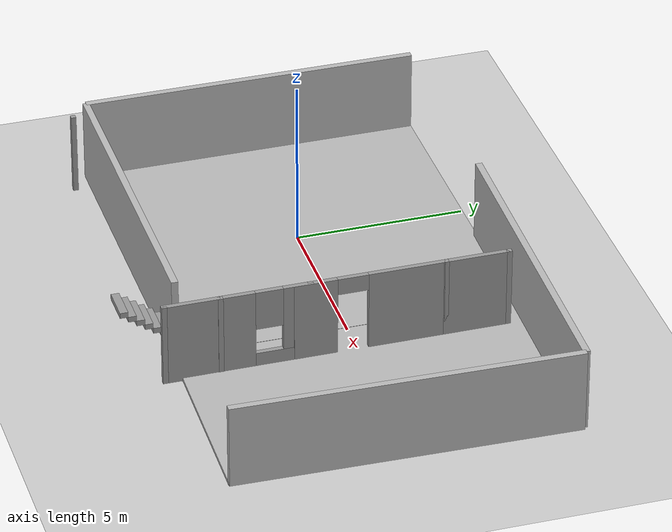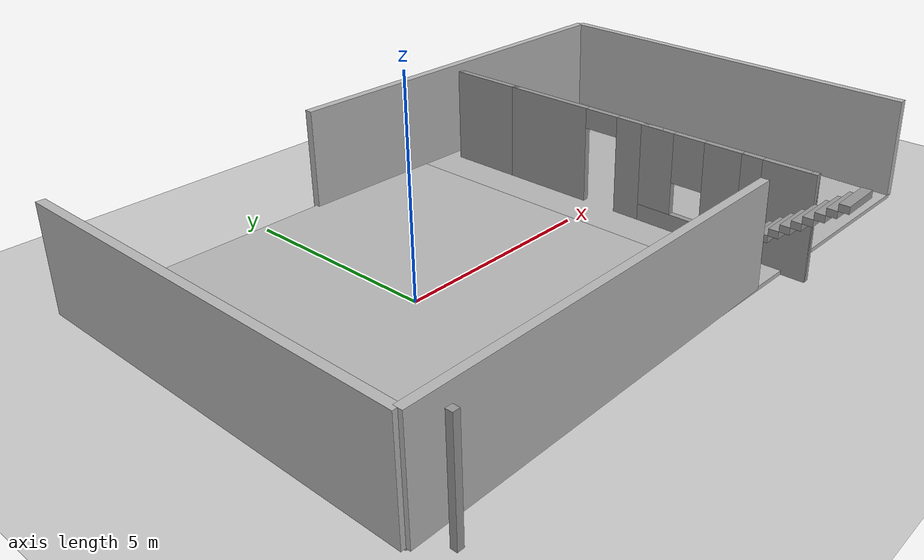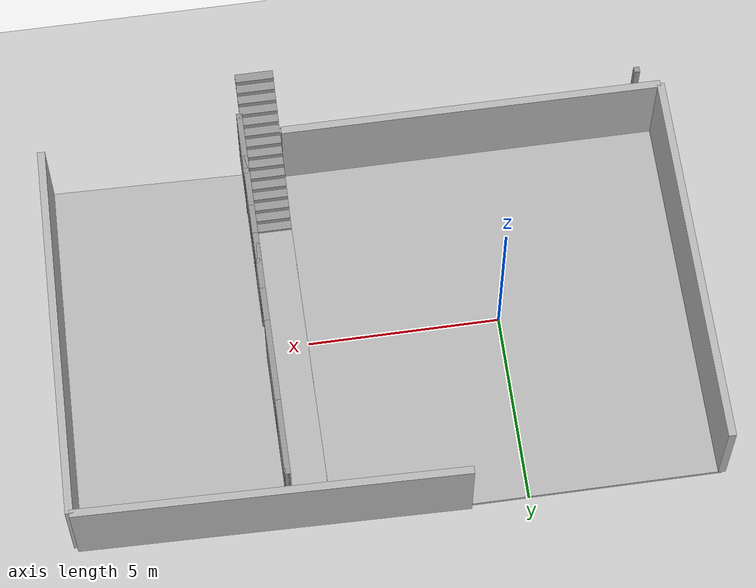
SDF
<sdf version="1.7">
 <world name="default">
  <light name="sun" type="directional">
   <pose>0 0 10 0 -0 0</pose>
   <diffuse>0.8 0.8 0.8 1</diffuse>
   <specular>0.2 0.2 0.2 1</specular>
   <attenuation>
    <range>1000</range>
    <constant>0.9</constant>
    <linear>0.01</linear>
    <quadratic>0.001</quadratic>
   </attenuation>
   <direction>-0.5 0.1 -0.9</direction>
   <spot><inner_angle>0</inner_angle><outer_angle>0</outer_angle><falloff>0</falloff></spot>
  </light>
  <model name="ground_plane">
   <static>1</static>
   <link name="link">
    <collision name="collision">
     <geometry><plane><normal>0 0 1</normal><size>100 100</size></plane></geometry>
     <surface>
      <contact><collide_bitmask>65535</collide_bitmask></contact>
      <friction><ode><mu>100</mu><mu2>50</mu2></ode></friction>
     </surface>
    </collision>
    <visual name="visual">
     <cast_shadows>0</cast_shadows>
     <geometry><plane><normal>0 0 1</normal><size>100 100</size></plane></geometry>
     <material>
      <script><uri>file://media/materials/scripts/gazebo.material</uri><name>Gazebo/Grey</name></script>
     </material>
    </visual>
   </link>
  </model>
  <gravity>0 0 -9.8</gravity>
  <magnetic_field>6e-06 2.3e-05 -4.2e-05</magnetic_field>
  <atmosphere type="adiabatic"/>
  <physics type="ode">
   <max_step_size>0.001</max_step_size>
   <real_time_factor>1</real_time_factor>
   <real_time_update_rate>1000</real_time_update_rate>
  </physics>
  <scene><ambient>0.4 0.4 0.4 1</ambient><background>0.7 0.7 0.7 1</background><shadows>1</shadows></scene>
  <audio><device>default</device></audio>
  <spherical_coordinates>
   <surface_model>EARTH_WGS84</surface_model>
   <latitude_deg>0</latitude_deg>
   <longitude_deg>0</longitude_deg>
   <elevation>0</elevation>
   <heading_deg>0</heading_deg>
  </spherical_coordinates>
  <model name="hotel_world">
   <link name="floor">
    <inertial>
     <mass>1</mass>
     <inertia><ixx>1</ixx><ixy>0</ixy><ixz>0</ixz><iyy>1</iyy><iyz>0</iyz><izz>1</izz></inertia>
    </inertial>
    <collision name="floor_collision"><geometry><box><size>10 10 0.1</size></box></geometry></collision>
    <collision name="floor_fixed_joint_lump__wall1_collision_1">
     <pose>-5 0 1.25 0 -0 0</pose>
     <geometry><box><size>0.2 10 2.5</size></box></geometry>
    </collision>
    <collision name="floor_fixed_joint_lump__wall2_collision_2">
     <pose>0 -5 1.25 0 -0 0</pose>
     <geometry><box><size>10 0.2 2.5</size></box></geometry>
    </collision>
    <visual name="floor_visual"><geometry><box><size>10 10 0.1</size></box></geometry></visual>
    <visual name="floor_fixed_joint_lump__wall1_visual_1">
     <pose>-5 0 1.25 0 -0 0</pose>
     <geometry><box><size>0.2 10 2.5</size></box></geometry>
    </visual>
    <visual name="floor_fixed_joint_lump__wall2_visual_2">
     <pose>0 -5 1.25 0 -0 0</pose>
     <geometry><box><size>10 0.2 2.5</size></box></geometry>
    </visual>
   </link>
   <pose>0.021485 0.006035 0.049982 0 -4e-06 0</pose>
  </model>
  <model name="hotel_world_clone">
   <link name="floor">
    <inertial>
     <mass>1</mass>
     <inertia><ixx>1</ixx><ixy>0</ixy><ixz>0</ixz><iyy>1</iyy><iyz>0</iyz><izz>1</izz></inertia>
    </inertial>
    <collision name="floor_collision"><geometry><box><size>10 10 0.1</size></box></geometry></collision>
    <collision name="floor_fixed_joint_lump__wall1_collision_1">
     <pose>-5 0 1.25 0 -0 0</pose>
     <geometry><box><size>0.2 10 2.5</size></box></geometry>
    </collision>
    <collision name="floor_fixed_joint_lump__wall2_collision_2">
     <pose>0 -5 1.25 0 -0 0</pose>
     <geometry><box><size>10 0.2 2.5</size></box></geometry>
    </collision>
    <visual name="floor_visual"><geometry><box><size>10 10 0.1</size></box></geometry></visual>
    <visual name="floor_fixed_joint_lump__wall1_visual_1">
     <pose>-5 0 1.25 0 -0 0</pose>
     <geometry><box><size>0.2 10 2.5</size></box></geometry>
    </visual>
    <visual name="floor_fixed_joint_lump__wall2_visual_2">
     <pose>0 -5 1.25 0 -0 0</pose>
     <geometry><box><size>10 0.2 2.5</size></box></geometry>
    </visual>
   </link>
   <pose>6.36702 -0.108601 0.041895 0 4e-06 3.11863</pose>
  </model>
  <model name="Untitled_0">
   <pose>0.803426 -1.1716 0 0 -0 0</pose>
   <link name="Stairs_0">
    <visual name="Stairs_0_Visual_0">
     <pose>4.71725 -2.25797 0.083333 0 -0 0</pose>
     <geometry><box><size>1 0.233333 0.166667</size></box></geometry>
     <material>
      <script><uri>file://media/materials/scripts/gazebo.material</uri><name>Gazebo/Grey</name></script>
      <ambient>1 1 1 1</ambient>
     </material>
     <meta><layer>0</layer></meta>
    </visual>
    <collision name="Stairs_0_Collision_0">
     <geometry><box><size>1 0.233333 0.166667</size></box></geometry>
     <pose>4.71725 -2.25797 0.083333 0 -0 0</pose>
    </collision>
    <visual name="Stairs_0_Visual_1">
     <pose>4.71725 -2.49131 0.25 0 -0 0</pose>
     <geometry><box><size>1 0.233333 0.166667</size></box></geometry>
     <material>
      <script><uri>file://media/materials/scripts/gazebo.material</uri><name>Gazebo/Grey</name></script>
      <ambient>1 1 1 1</ambient>
     </material>
     <meta><layer>0</layer></meta>
    </visual>
    <collision name="Stairs_0_Collision_1">
     <geometry><box><size>1 0.233333 0.166667</size></box></geometry>
     <pose>4.71725 -2.49131 0.25 0 -0 0</pose>
    </collision>
    <visual name="Stairs_0_Visual_2">
     <pose>4.71725 -2.72464 0.416667 0 -0 0</pose>
     <geometry><box><size>1 0.233333 0.166667</size></box></geometry>
     <material>
      <script><uri>file://media/materials/scripts/gazebo.material</uri><name>Gazebo/Grey</name></script>
      <ambient>1 1 1 1</ambient>
     </material>
     <meta><layer>0</layer></meta>
    </visual>
    <collision name="Stairs_0_Collision_2">
     <geometry><box><size>1 0.233333 0.166667</size></box></geometry>
     <pose>4.71725 -2.72464 0.416667 0 -0 0</pose>
    </collision>
    <visual name="Stairs_0_Visual_3">
     <pose>4.71725 -2.95797 0.583333 0 -0 0</pose>
     <geometry><box><size>1 0.233333 0.166667</size></box></geometry>
     <material>
      <script><uri>file://media/materials/scripts/gazebo.material</uri><name>Gazebo/Grey</name></script>
      <ambient>1 1 1 1</ambient>
     </material>
     <meta><layer>0</layer></meta>
    </visual>
    <collision name="Stairs_0_Collision_3">
     <geometry><box><size>1 0.233333 0.166667</size></box></geometry>
     <pose>4.71725 -2.95797 0.583333 0 -0 0</pose>
    </collision>
    <visual name="Stairs_0_Visual_4">
     <pose>4.71725 -3.19131 0.75 0 -0 0</pose>
     <geometry><box><size>1 0.233333 0.166667</size></box></geometry>
     <material>
      <script><uri>file://media/materials/scripts/gazebo.material</uri><name>Gazebo/Grey</name></script>
      <ambient>1 1 1 1</ambient>
     </material>
     <meta><layer>0</layer></meta>
    </visual>
    <collision name="Stairs_0_Collision_4">
     <geometry><box><size>1 0.233333 0.166667</size></box></geometry>
     <pose>4.71725 -3.19131 0.75 0 -0 0</pose>
    </collision>
    <visual name="Stairs_0_Visual_5">
     <pose>4.71725 -3.42464 0.916667 0 -0 0</pose>
     <geometry><box><size>1 0.233333 0.166667</size></box></geometry>
     <material>
      <script><uri>file://media/materials/scripts/gazebo.material</uri><name>Gazebo/Grey</name></script>
      <ambient>1 1 1 1</ambient>
     </material>
     <meta><layer>0</layer></meta>
    </visual>
    <collision name="Stairs_0_Collision_5">
     <geometry><box><size>1 0.233333 0.166667</size></box></geometry>
     <pose>4.71725 -3.42464 0.916667 0 -0 0</pose>
    </collision>
    <visual name="Stairs_0_Visual_6">
     <pose>4.71725 -3.65797 1.08333 0 -0 0</pose>
     <geometry><box><size>1 0.233333 0.166667</size></box></geometry>
     <material>
      <script><uri>file://media/materials/scripts/gazebo.material</uri><name>Gazebo/Grey</name></script>
      <ambient>1 1 1 1</ambient>
     </material>
     <meta><layer>0</layer></meta>
    </visual>
    <collision name="Stairs_0_Collision_6">
     <geometry><box><size>1 0.233333 0.166667</size></box></geometry>
     <pose>4.71725 -3.65797 1.08333 0 -0 0</pose>
    </collision>
    <visual name="Stairs_0_Visual_7">
     <pose>4.71725 -3.89131 1.25 0 -0 0</pose>
     <geometry><box><size>1 0.233333 0.166667</size></box></geometry>
     <material>
      <script><uri>file://media/materials/scripts/gazebo.material</uri><name>Gazebo/Grey</name></script>
      <ambient>1 1 1 1</ambient>
     </material>
     <meta><layer>0</layer></meta>
    </visual>
    <collision name="Stairs_0_Collision_7">
     <geometry><box><size>1 0.233333 0.166667</size></box></geometry>
     <pose>4.71725 -3.89131 1.25 0 -0 0</pose>
    </collision>
    <visual name="Stairs_0_Visual_8">
     <pose>4.71725 -4.12464 1.41667 0 -0 0</pose>
     <geometry><box><size>1 0.233333 0.166667</size></box></geometry>
     <material>
      <script><uri>file://media/materials/scripts/gazebo.material</uri><name>Gazebo/Grey</name></script>
      <ambient>1 1 1 1</ambient>
     </material>
     <meta><layer>0</layer></meta>
    </visual>
    <collision name="Stairs_0_Collision_8">
     <geometry><box><size>1 0.233333 0.166667</size></box></geometry>
     <pose>4.71725 -4.12464 1.41667 0 -0 0</pose>
    </collision>
    <visual name="Stairs_0_Visual_9">
     <pose>4.71725 -4.35797 1.58333 0 -0 0</pose>
     <geometry><box><size>1 0.233333 0.166667</size></box></geometry>
     <material>
      <script><uri>file://media/materials/scripts/gazebo.material</uri><name>Gazebo/Grey</name></script>
      <ambient>1 1 1 1</ambient>
     </material>
     <meta><layer>0</layer></meta>
    </visual>
    <collision name="Stairs_0_Collision_9">
     <geometry><box><size>1 0.233333 0.166667</size></box></geometry>
     <pose>4.71725 -4.35797 1.58333 0 -0 0</pose>
    </collision>
    <visual name="Stairs_0_Visual_10">
     <pose>4.71725 -4.59131 1.75 0 -0 0</pose>
     <geometry><box><size>1 0.233333 0.166667</size></box></geometry>
     <material>
      <script><uri>file://media/materials/scripts/gazebo.material</uri><name>Gazebo/Grey</name></script>
      <ambient>1 1 1 1</ambient>
     </material>
     <meta><layer>0</layer></meta>
    </visual>
    <collision name="Stairs_0_Collision_10">
     <geometry><box><size>1 0.233333 0.166667</size></box></geometry>
     <pose>4.71725 -4.59131 1.75 0 -0 0</pose>
    </collision>
    <visual name="Stairs_0_Visual_11">
     <pose>4.71725 -4.82464 1.91667 0 -0 0</pose>
     <geometry><box><size>1 0.233333 0.166667</size></box></geometry>
     <material>
      <script><uri>file://media/materials/scripts/gazebo.material</uri><name>Gazebo/Grey</name></script>
      <ambient>1 1 1 1</ambient>
     </material>
     <meta><layer>0</layer></meta>
    </visual>
    <collision name="Stairs_0_Collision_11">
     <geometry><box><size>1 0.233333 0.166667</size></box></geometry>
     <pose>4.71725 -4.82464 1.91667 0 -0 0</pose>
    </collision>
    <visual name="Stairs_0_Visual_12">
     <pose>4.71725 -5.05797 2.08333 0 -0 0</pose>
     <geometry><box><size>1 0.233333 0.166667</size></box></geometry>
     <material>
      <script><uri>file://media/materials/scripts/gazebo.material</uri><name>Gazebo/Grey</name></script>
      <ambient>1 1 1 1</ambient>
     </material>
     <meta><layer>0</layer></meta>
    </visual>
    <collision name="Stairs_0_Collision_12">
     <geometry><box><size>1 0.233333 0.166667</size></box></geometry>
     <pose>4.71725 -5.05797 2.08333 0 -0 0</pose>
    </collision>
    <visual name="Stairs_0_Visual_13">
     <pose>4.71725 -5.29131 2.25 0 -0 0</pose>
     <geometry><box><size>1 0.233333 0.166667</size></box></geometry>
     <material>
      <script><uri>file://media/materials/scripts/gazebo.material</uri><name>Gazebo/Grey</name></script>
      <ambient>1 1 1 1</ambient>
     </material>
     <meta><layer>0</layer></meta>
    </visual>
    <collision name="Stairs_0_Collision_13">
     <geometry><box><size>1 0.233333 0.166667</size></box></geometry>
     <pose>4.71725 -5.29131 2.25 0 -0 0</pose>
    </collision>
    <visual name="Stairs_0_Visual_14">
     <pose>4.71725 -5.52464 2.41667 0 -0 0</pose>
     <geometry><box><size>1 0.233333 0.166667</size></box></geometry>
     <material>
      <script><uri>file://media/materials/scripts/gazebo.material</uri><name>Gazebo/Grey</name></script>
      <ambient>1 1 1 1</ambient>
     </material>
     <meta><layer>0</layer></meta>
    </visual>
    <collision name="Stairs_0_Collision_14">
     <geometry><box><size>1 0.233333 0.166667</size></box></geometry>
     <pose>4.71725 -5.52464 2.41667 0 -0 0</pose>
    </collision>
   </link>
   <link name="Wall_10">
    <collision name="Wall_10_Collision">
     <geometry><box><size>0.15 0.15 2.5</size></box></geometry>
     <pose>0 0 1.25 0 -0 0</pose>
    </collision>
    <visual name="Wall_10_Visual">
     <pose>0 0 1.25 0 -0 0</pose>
     <geometry><box><size>0.15 0.15 2.5</size></box></geometry>
     <material>
      <script><uri>file://media/materials/scripts/gazebo.material</uri><name>Gazebo/Grey</name></script>
      <ambient>1 1 1 1</ambient>
     </material>
     <meta><layer>0</layer></meta>
    </visual>
    <pose>5.2394 -0.211822 0 0 -0 0</pose>
   </link>
   <link name="Wall_12">
    <pose>5.24271 1.54131 0 0 -0 1.5708</pose>
    <visual name="Wall_12_Visual_0">
     <pose>-1.61921 0 1.25 0 -0 0</pose>
     <geometry><box><size>1.26158 0.15 2.5</size></box></geometry>
     <material>
      <script><uri>file://media/materials/scripts/gazebo.material</uri><name>Gazebo/Grey</name></script>
      <ambient>1 1 1 1</ambient>
     </material>
     <meta><layer>0</layer></meta>
    </visual>
    <collision name="Wall_12_Collision_0">
     <geometry><box><size>1.26158 0.15 2.5</size></box></geometry>
     <pose>-1.61921 0 1.25 0 -0 0</pose>
    </collision>
    <visual name="Wall_12_Visual_1">
     <pose>1.08079 0 1.25 0 -0 0</pose>
     <geometry><box><size>2.33842 0.15 2.5</size></box></geometry>
     <material>
      <script><uri>file://media/materials/scripts/gazebo.material</uri><name>Gazebo/Grey</name></script>
      <ambient>1 1 1 1</ambient>
     </material>
     <meta><layer>0</layer></meta>
    </visual>
    <collision name="Wall_12_Collision_1">
     <geometry><box><size>2.33842 0.15 2.5</size></box></geometry>
     <pose>1.08079 0 1.25 0 -0 0</pose>
    </collision>
    <visual name="Wall_12_Visual_2">
     <pose>-0.538423 0 2.25 0 -0 0</pose>
     <geometry><box><size>0.9 0.15 0.5</size></box></geometry>
     <material>
      <script><uri>file://media/materials/scripts/gazebo.material</uri><name>Gazebo/Grey</name></script>
      <ambient>1 1 1 1</ambient>
     </material>
     <meta><layer>0</layer></meta>
    </visual>
    <collision name="Wall_12_Collision_2">
     <geometry><box><size>0.9 0.15 0.5</size></box></geometry>
     <pose>-0.538423 0 2.25 0 -0 0</pose>
    </collision>
   </link>
   <link name="Wall_13">
    <collision name="Wall_13_Collision">
     <geometry><box><size>0.15 0.15 2.5</size></box></geometry>
     <pose>0 0 1.25 0 -0 0</pose>
    </collision>
    <visual name="Wall_13_Visual">
     <pose>0 0 1.25 0 -0 0</pose>
     <geometry><box><size>0.15 0.15 2.5</size></box></geometry>
     <material>
      <script><uri>file://media/materials/scripts/gazebo.material</uri><name>Gazebo/Grey</name></script>
      <ambient>1 1 1 1</ambient>
     </material>
     <meta><layer>0</layer></meta>
    </visual>
    <pose>5.24271 3.71631 0 0 -0 0</pose>
   </link>
   <link name="Wall_14">
    <collision name="Wall_14_Collision">
     <geometry><box><size>0.15 0.15 2.5</size></box></geometry>
     <pose>0 0 1.25 0 -0 0</pose>
    </collision>
    <visual name="Wall_14_Visual">
     <pose>0 0 1.25 0 -0 0</pose>
     <geometry><box><size>0.15 0.15 2.5</size></box></geometry>
     <material>
      <script><uri>file://media/materials/scripts/gazebo.material</uri><name>Gazebo/Grey</name></script>
      <ambient>1 1 1 1</ambient>
     </material>
     <meta><layer>0</layer></meta>
    </visual>
    <pose>5.24271 3.71631 0 0 -0 0</pose>
   </link>
   <link name="Wall_16">
    <collision name="Wall_16_Collision">
     <geometry><box><size>2 0.15 2.5</size></box></geometry>
     <pose>0 0 1.25 0 -0 0</pose>
    </collision>
    <visual name="Wall_16_Visual">
     <pose>0 0 1.25 0 -0 0</pose>
     <geometry><box><size>2 0.15 2.5</size></box></geometry>
     <material>
      <script><uri>file://media/materials/scripts/gazebo.material</uri><name>Gazebo/Grey</name></script>
      <ambient>1 1 1 1</ambient>
     </material>
     <meta><layer>0</layer></meta>
    </visual>
    <pose>5.24271 4.64131 0 0 -0 1.5708</pose>
   </link>
   <link name="Wall_17">
    <collision name="Wall_17_Collision">
     <geometry><box><size>0.15 0.15 2.5</size></box></geometry>
     <pose>0 0 1.25 0 -0 0</pose>
    </collision>
    <visual name="Wall_17_Visual">
     <pose>0 0 1.25 0 -0 0</pose>
     <geometry><box><size>0.15 0.15 2.5</size></box></geometry>
     <material>
      <script><uri>file://media/materials/scripts/gazebo.material</uri><name>Gazebo/Grey</name></script>
      <ambient>1 1 1 1</ambient>
     </material>
     <meta><layer>0</layer></meta>
    </visual>
    <pose>5.24271 5.56631 0 0 -0 0</pose>
   </link>
   <link name="Wall_19">
    <collision name="Wall_19_Collision">
     <geometry><box><size>1.75 0.15 2.5</size></box></geometry>
     <pose>0 0 1.25 0 -0 0</pose>
    </collision>
    <visual name="Wall_19_Visual">
     <pose>0 0 1.25 0 -0 0</pose>
     <geometry><box><size>1.75 0.15 2.5</size></box></geometry>
     <material>
      <script><uri>file://media/materials/scripts/gazebo.material</uri><name>Gazebo/Grey</name></script>
      <ambient>1 1 1 1</ambient>
     </material>
     <meta><layer>0</layer></meta>
    </visual>
    <pose>5.2394 -3.61182 0 0 -0 -1.5708</pose>
   </link>
   <link name="Wall_20">
    <collision name="Wall_20_Collision">
     <geometry><box><size>0.15 0.15 2.5</size></box></geometry>
     <pose>0 0 1.25 0 -0 0</pose>
    </collision>
    <visual name="Wall_20_Visual">
     <pose>0 0 1.25 0 -0 0</pose>
     <geometry><box><size>0.15 0.15 2.5</size></box></geometry>
     <material>
      <script><uri>file://media/materials/scripts/gazebo.material</uri><name>Gazebo/Grey</name></script>
      <ambient>1 1 1 1</ambient>
     </material>
     <meta><layer>0</layer></meta>
    </visual>
    <pose>5.2394 -4.41182 0 0 -0 0</pose>
   </link>
   <link name="Wall_4">
    <collision name="Wall_4_Collision">
     <geometry><box><size>0.15 0.15 2.5</size></box></geometry>
     <pose>0 0 1.25 0 -0 0</pose>
    </collision>
    <visual name="Wall_4_Visual">
     <pose>0 0 1.25 0 -0 0</pose>
     <geometry><box><size>0.15 0.15 2.5</size></box></geometry>
     <material>
      <script><uri>file://media/materials/scripts/gazebo.material</uri><name>Gazebo/Grey</name></script>
      <ambient>1 1 1 1</ambient>
     </material>
     <meta><layer>0</layer></meta>
    </visual>
    <pose>-5.2494 -4.34394 0 0 -0 0</pose>
   </link>
   <link name="Wall_6">
    <collision name="Wall_6_Collision">
     <geometry><box><size>0.5 0.15 2.5</size></box></geometry>
     <pose>0 0 1.25 0 -0 0</pose>
    </collision>
    <visual name="Wall_6_Visual">
     <pose>0 0 1.25 0 -0 0</pose>
     <geometry><box><size>0.5 0.15 2.5</size></box></geometry>
     <material>
      <script><uri>file://media/materials/scripts/gazebo.material</uri><name>Gazebo/Grey</name></script>
      <ambient>1 1 1 1</ambient>
     </material>
     <meta><layer>0</layer></meta>
    </visual>
    <pose>5.2394 -2.98682 0 0 -0 1.5708</pose>
   </link>
   <link name="Wall_7">
    <collision name="Wall_7_Collision">
     <geometry><box><size>0.16 0.15 2.5</size></box></geometry>
     <pose>0 0 1.25 0 -0 0</pose>
    </collision>
    <visual name="Wall_7_Visual">
     <pose>0 0 1.25 0 -0 0</pose>
     <geometry><box><size>0.16 0.15 2.5</size></box></geometry>
     <material>
      <script><uri>file://media/materials/scripts/gazebo.material</uri><name>Gazebo/Grey</name></script>
      <ambient>1 1 1 1</ambient>
     </material>
     <meta><layer>0</layer></meta>
    </visual>
    <pose>5.2444 -2.81182 0 0 -0 0</pose>
   </link>
   <link name="Wall_9">
    <pose>5.2394 -1.51182 0 0 -0 1.5708</pose>
    <visual name="Wall_9_Visual_0">
     <pose>-0.838461 0 1.25 0 -0 0</pose>
     <geometry><box><size>1.07308 0.15 2.5</size></box></geometry>
     <material>
      <script><uri>file://media/materials/scripts/gazebo.material</uri><name>Gazebo/Grey</name></script>
      <ambient>1 1 1 1</ambient>
     </material>
     <meta><layer>0</layer></meta>
    </visual>
    <collision name="Wall_9_Collision_0">
     <geometry><box><size>1.07308 0.15 2.5</size></box></geometry>
     <pose>-0.838461 0 1.25 0 -0 0</pose>
    </collision>
    <visual name="Wall_9_Visual_1">
     <pose>0.536539 0 0.25 0 -0 0</pose>
     <geometry><box><size>1.67692 0.15 0.5</size></box></geometry>
     <material>
      <script><uri>file://media/materials/scripts/gazebo.material</uri><name>Gazebo/Grey</name></script>
      <ambient>1 1 1 1</ambient>
     </material>
     <meta><layer>0</layer></meta>
    </visual>
    <collision name="Wall_9_Collision_1">
     <geometry><box><size>1.67692 0.15 0.5</size></box></geometry>
     <pose>0.536539 0 0.25 0 -0 0</pose>
    </collision>
    <visual name="Wall_9_Visual_2">
     <pose>0.936539 0 1.5 0 -0 0</pose>
     <geometry><box><size>0.876922 0.15 2</size></box></geometry>
     <material>
      <script><uri>file://media/materials/scripts/gazebo.material</uri><name>Gazebo/Grey</name></script>
      <ambient>1 1 1 1</ambient>
     </material>
     <meta><layer>0</layer></meta>
    </visual>
    <collision name="Wall_9_Collision_2">
     <geometry><box><size>0.876922 0.15 2</size></box></geometry>
     <pose>0.936539 0 1.5 0 -0 0</pose>
    </collision>
    <visual name="Wall_9_Visual_3">
     <pose>0.098078 0 1.9 0 -0 0</pose>
     <geometry><box><size>0.8 0.15 1.2</size></box></geometry>
     <material>
      <script><uri>file://media/materials/scripts/gazebo.material</uri><name>Gazebo/Grey</name></script>
      <ambient>1 1 1 1</ambient>
     </material>
     <meta><layer>0</layer></meta>
    </visual>
    <collision name="Wall_9_Collision_3">
     <geometry><box><size>0.8 0.15 1.2</size></box></geometry>
     <pose>0.098078 0 1.9 0 -0 0</pose>
    </collision>
   </link>
   <static>1</static>
  </model>
 </world>
</sdf>
